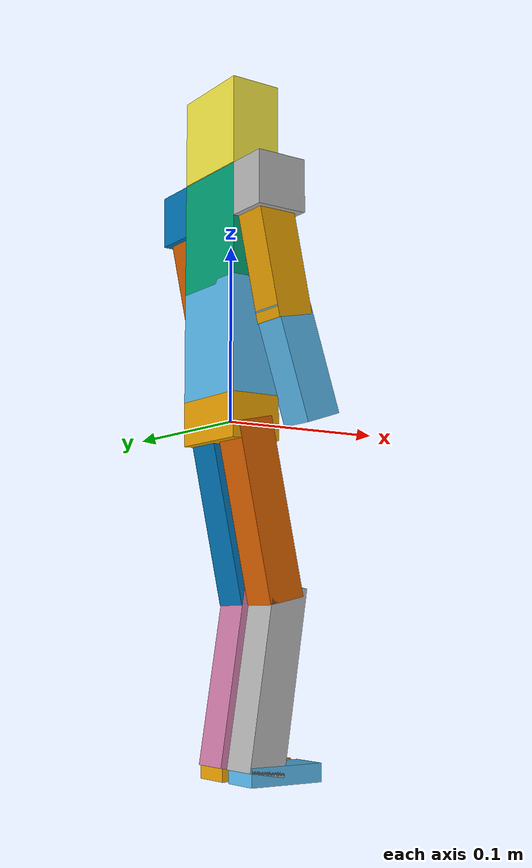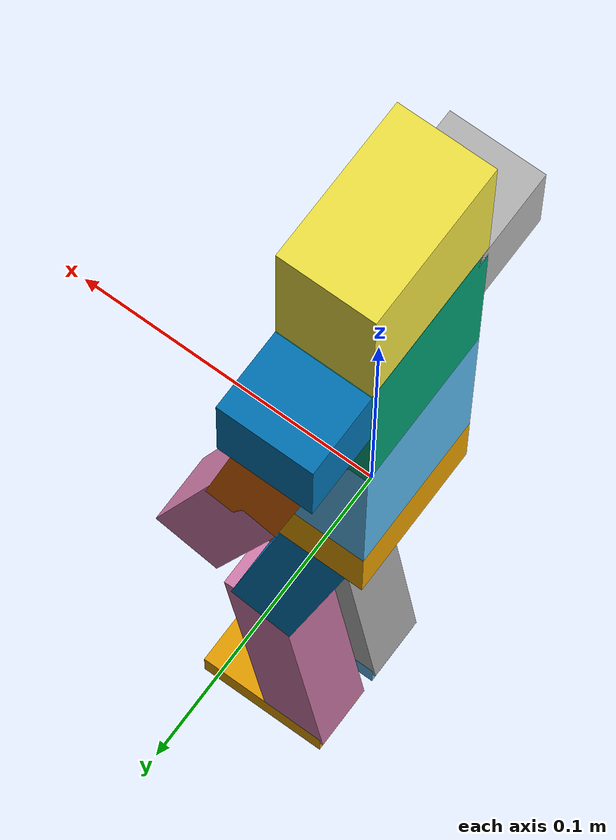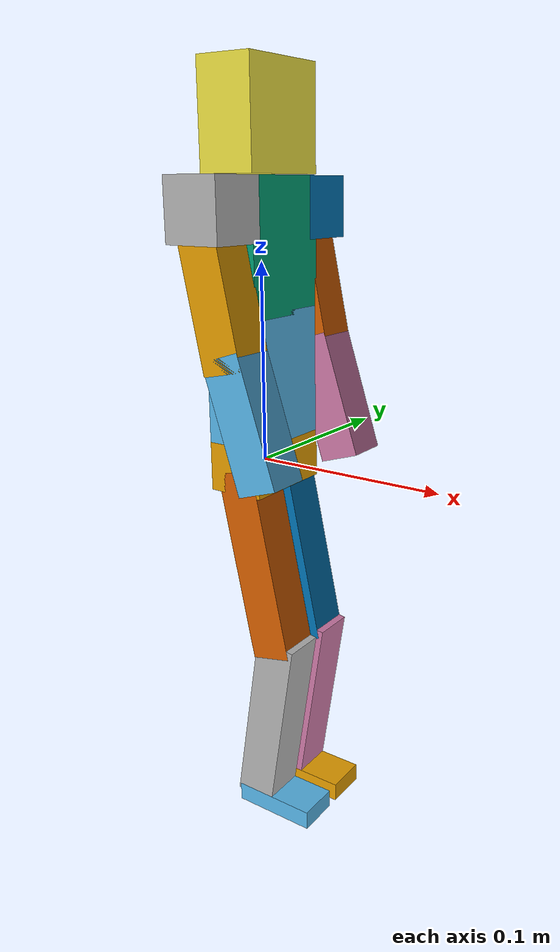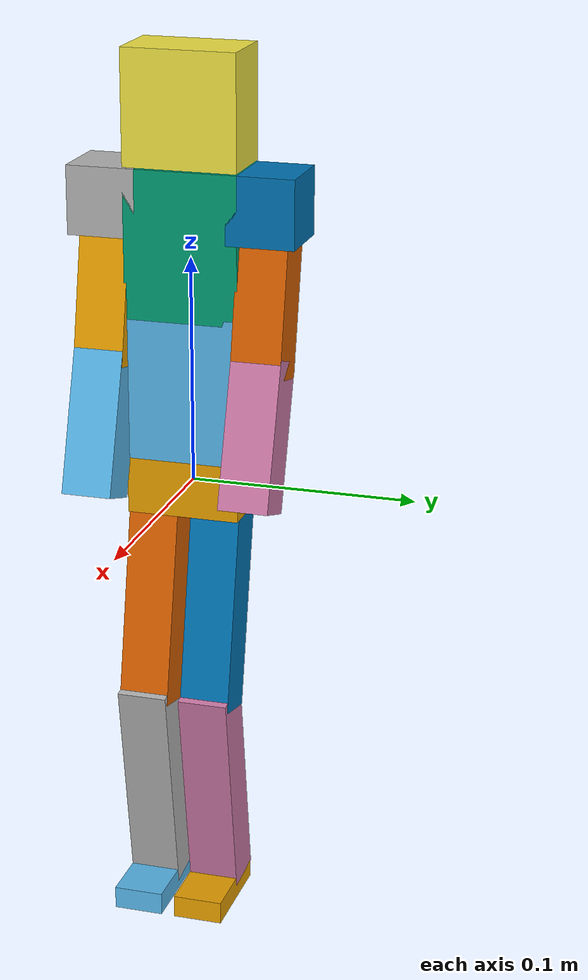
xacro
<?xml version="1.0"?>
<robot xmlns:xacro="http://www.ros.org/wiki/xacro" name="Robot 7">

<xacro:property name="total_weight" value="75" /> <!--KG-->
<xacro:property name="torso_weight" value="${total_weight * 0.6}" />
<xacro:property name="leg_weight" value="${total_weight * .15}" />
<xacro:property name="arm_weight" value="${total_weight * .05}" />
<xacro:property name="Cyan" value="0 1.0 1.0 1.0"/>
<xacro:property name="Lilac" value=".8 .6 1.0 1.0"/>

<!-- FIX 1: solid sphere inertia - was using ${weight} instead of ${mass} in mass tag -->
<xacro:macro name="solid_sphere_inertia_tensors" params="mass radius" >
    <inertial>
        <origin xyz="0.0 0.0 0.0" rpy="0.0 0.0 0.0"/>
        <mass value="${mass}"/>
        <inertia
        ixx="${(2/5) * mass * radius * radius}" ixy="0.0" ixz="0.0"
        iyy="${(2/5) * mass * radius * radius}" iyz="0.0"
        izz="${(2/5) * mass * radius * radius}"/>
    </inertial>
</xacro:macro>

<!-- FIX 1: hollow sphere inertia - same ${weight} -> ${mass} bug -->
<xacro:macro name="hollow_sphere_inertia_tensors" params="mass radius" >
    <inertial>
        <origin xyz="0.0 0.0 0.0" rpy="0.0 0.0 0.0"/>
        <mass value="${mass}"/>
        <inertia
        ixx="${(2/3) * mass * radius * radius}" ixy="0.0" ixz="0.0"
        iyy="${(2/3) * mass * radius * radius}" iyz="0.0"
        izz="${(2/3) * mass * radius * radius}"/>
    </inertial>
</xacro:macro>

<!-- FIX 2: cuboid inertia now takes x_len y_len z_len explicitly
    Original used hardcoded magic numbers (0.025, 0.0225) instead of actual dims
     Correct formula: ixx = m/12 * (y^2 + z^2), etc. -->
<xacro:macro name="cuboid_inertia_tensors" params="mass x_len y_len z_len" >
    <inertial>
        <origin xyz="0.0 0.0 0.0" rpy="0.0 0.0 0.0"/>
        <mass value="${mass}"/>
        <inertia
        ixx="${(mass/12) * (y_len*y_len + z_len*z_len)}" ixy="0.0" ixz="0.0"
        iyy="${(mass/12) * (x_len*x_len + z_len*z_len)}" iyz="0.0"
        izz="${(mass/12) * (x_len*x_len + y_len*y_len)}"/>
    </inertial>
</xacro:macro>

<!-- FIX 2 continued: cuboid macro now passes x_len y_len z_len to inertia macro -->
<xacro:macro name="cuboid" params="name mass x_len y_len z_len origin rpy">
    <link name="${name}">
        <visual>
            <geometry>
                <box size="${x_len} ${y_len} ${z_len}"/>
            </geometry>
            <origin xyz="${origin}" rpy="${rpy}"/>
        </visual>
        <collision>
            <geometry>
                <box size="${x_len} ${y_len} ${z_len}"/>
            </geometry>
            <origin xyz="${origin}" rpy="${rpy}"/>
        </collision>
        <xacro:cuboid_inertia_tensors mass="${mass}" x_len="${x_len}" y_len="${y_len}" z_len="${z_len}"/>
    </link>
</xacro:macro>

<xacro:macro name="revolve" params="name parent child hi lo axis offset">
    <joint name="${name}" type="revolute">
        <parent link="${parent}"/>
        <child link="${child}"/>
        <limit lower="${lo}" upper="${hi}" effort="200.0" velocity="25.0"/>
        <dynamics damping="0.0" friction="0.0"/>
        <origin xyz="${offset}"/>
        <axis xyz="${axis}"/>
    </joint>
</xacro:macro>

<xacro:cuboid name="base_link" mass="${torso_weight * .12}" x_len=".03" y_len=".05" z_len=".025" origin="0 0 0" rpy="0 0 0"/>

<!-- Torso Links -->
<xacro:cuboid name="low_torso"    mass="${torso_weight * .31}" x_len=".03" y_len=".05" z_len=".065" origin="0 0 .045"  rpy="0 0 0"/>
<xacro:cuboid name="upper_torso"  mass="${torso_weight * .31}" x_len=".03" y_len=".05" z_len=".065" origin="0 0 .0325" rpy="0 0 0"/>
<xacro:cuboid name="head"         mass="${torso_weight * .24}" x_len=".03" y_len=".05" z_len=".05"  origin="0 0 .0325" rpy="0 0 0"/>

<!-- Torso Joints -->
<xacro:revolve name="bend_low_torso"   parent="base_link"   child="low_torso"    hi=".8" lo="-.8" axis="0 1 0" offset="0 0 0"/>
<xacro:revolve name="twist_upper_torso" parent="low_torso"  child="upper_torso"  hi=".8" lo="-.8" axis="0 0 1" offset="0 0 .075"/>
<xacro:revolve name="gaze"             parent="upper_torso" child="head"         hi=".8" lo="-.8" axis="0 0 1" offset="0 0 .058"/>

<!-- Arm Links -->
<xacro:cuboid name="right_delt"      mass="${arm_weight * .4}"  x_len=".03"  y_len=".03"  z_len=".03"  origin="0 0 0"       rpy="0 0 0"/>
<xacro:cuboid name="right_upper_arm" mass="${arm_weight * .29}" x_len=".022" y_len=".022" z_len=".065" origin=".005 0 -.025" rpy="0 -${3.14/15} 0"/>
<xacro:cuboid name="right_lower_arm" mass="${arm_weight * .29}" x_len=".022" y_len=".022" z_len=".065" origin=".005 0 -.025" rpy="0 -${3.14/10} 0"/>

<xacro:cuboid name="left_delt"       mass="${arm_weight * .4}"  x_len=".03"  y_len=".03"  z_len=".03"  origin="0 0 0"       rpy="0 0 0"/>
<xacro:cuboid name="left_upper_arm"  mass="${arm_weight * .29}" x_len=".022" y_len=".022" z_len=".065" origin=".005 0 -.025" rpy="0 -${3.14/15} 0"/>
<xacro:cuboid name="left_lower_arm"  mass="${arm_weight * .29}" x_len=".022" y_len=".022" z_len=".065" origin=".005 0 -.025" rpy="0 -${3.14/10} 0"/>

<!-- Arm Joints -->
<xacro:revolve name="right_shoulder_x" parent="upper_torso"    child="right_delt"      hi="1.5"  lo="0"    axis="1 0 0" offset="0 .035 .05"/>
<xacro:revolve name="right_shoulder_y" parent="right_delt"     child="right_upper_arm" hi="1.2"  lo="-1.2" axis="0 1 0" offset="0 0 -.015"/>
<xacro:revolve name="right_elbow"      parent="right_upper_arm" child="right_lower_arm" hi="0"   lo="-1.2" axis="0 1 0" offset=".015 0 -.055"/>

<xacro:revolve name="left_shoulder_x"  parent="upper_torso"   child="left_delt"       hi="0"    lo="-1.5" axis="1 0 0" offset="0 -.035 .05"/>
<xacro:revolve name="left_shoulder_y"  parent="left_delt"     child="left_upper_arm"  hi="1.2"  lo="-1.2" axis="0 1 0" offset="0 0 -.015"/>
<xacro:revolve name="left_elbow"       parent="left_upper_arm" child="left_lower_arm"  hi="0"   lo="-1.2" axis="0 1 0" offset=".015 0 -.055"/>

<xacro:cuboid name="right_hip_inter" mass="${leg_weight * .05}" x_len=".02" y_len=".02" z_len=".02" origin="0 0 0" rpy="0 0 0"/>
<xacro:cuboid name="left_hip_inter"  mass="${leg_weight * .05}" x_len=".02" y_len=".02" z_len=".02" origin="0 0 0" rpy="0 0 0"/>

<!-- abduction joints first (X axis), then flexion joints (Y axis) as before -->
<xacro:revolve name="right_hip_abduct" parent="base_link"       child="right_hip_inter" hi=".4"  lo="-.4"  axis="1 0 0" offset="0 .014 0"/>
<xacro:revolve name="right_hip_joint"  parent="right_hip_inter" child="right_thigh"     hi="1.2" lo="-1.2" axis="0 1 0" offset="0 0 0"/>

<xacro:revolve name="left_hip_abduct"  parent="base_link"       child="left_hip_inter"  hi=".4"  lo="-.4"  axis="1 0 0" offset="0 -.014 0"/>
<xacro:revolve name="left_hip_joint"   parent="left_hip_inter"  child="left_thigh"      hi="1.2" lo="-1.2" axis="0 1 0" offset="0 0 0"/>

<!-- Leg Links -->
<xacro:cuboid name="right_thigh" mass="${leg_weight * .5}" x_len=".022" y_len=".022" z_len=".1" origin=".01 0 -.05"  rpy="0 -${3.14/15} 0"/>
<xacro:cuboid name="left_thigh"  mass="${leg_weight * .5}" x_len=".022" y_len=".022" z_len=".1" origin=".01 0 -.05"  rpy="0 -${3.14/15} 0"/>

<xacro:cuboid name="right_calf"  mass="${leg_weight * .5}" x_len=".022" y_len=".022" z_len=".1" origin="-.005 0 -.05" rpy="0 ${3.14/20} 0"/>
<xacro:cuboid name="left_calf"   mass="${leg_weight * .5}" x_len=".022" y_len=".022" z_len=".1" origin="-.005 0 -.05" rpy="0 ${3.14/20} 0"/>

<xacro:cuboid name="right_foot"  mass="${leg_weight * .05}" x_len=".045" y_len=".022" z_len=".01" origin=".015 0 0" rpy="0 0 0"/>
<xacro:cuboid name="left_foot"   mass="${leg_weight * .05}" x_len=".045" y_len=".022" z_len=".01" origin=".015 0 0" rpy="0 0 0"/>

<!-- FIX 4: Leg masses were using arm_weight instead of leg_weight.
     leg_weight = total * 0.15, arm_weight = total * 0.05 — legs were 3x too light -->

<!-- Leg Joints (knee and ankle unchanged) -->
<xacro:revolve name="right_knee"  parent="right_thigh" child="right_calf"  hi="1.2" lo="0"   axis="0 1 0" offset=".02 0 -.09"/>
<xacro:revolve name="left_knee"   parent="left_thigh"  child="left_calf"   hi="1.2" lo="0"   axis="0 1 0" offset=".02 0 -.09"/>

<xacro:revolve name="right_ankle" parent="right_calf"  child="right_foot"  hi=".8"  lo="-.8" axis="0 1 0" offset="-.015 0 -.1"/>
<xacro:revolve name="left_ankle"  parent="left_calf"   child="left_foot"   hi=".8"  lo="-.8" axis="0 1 0" offset="-.015 0 -.1"/>

</robot>
